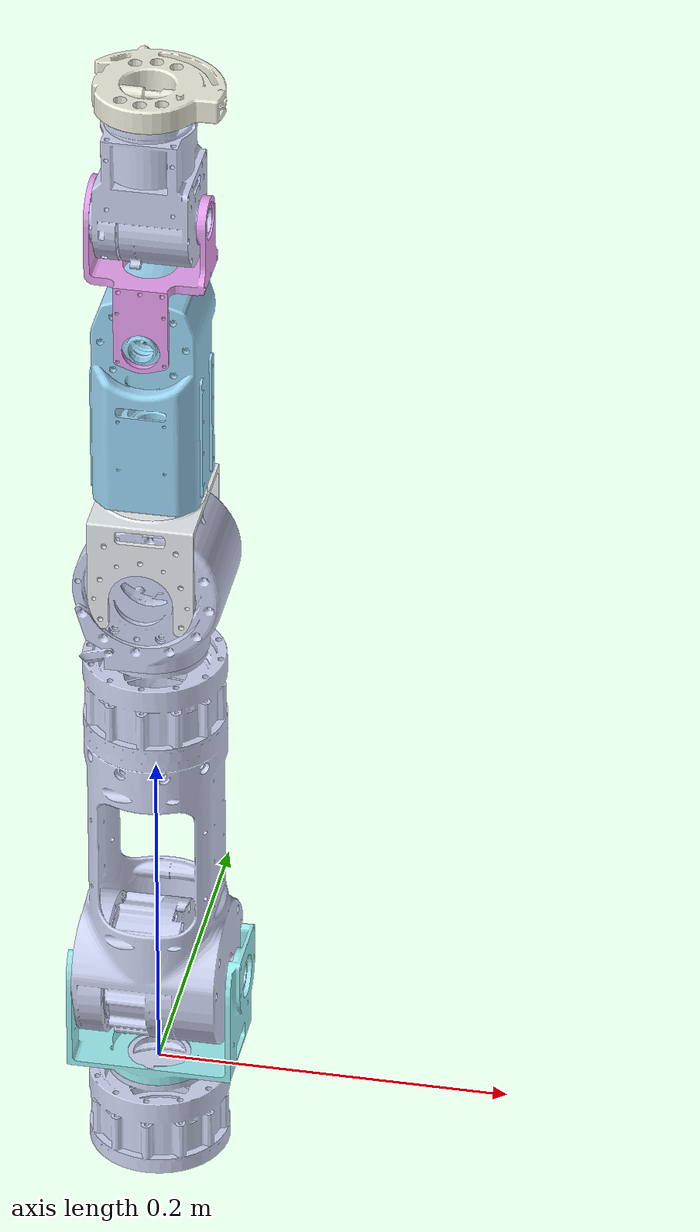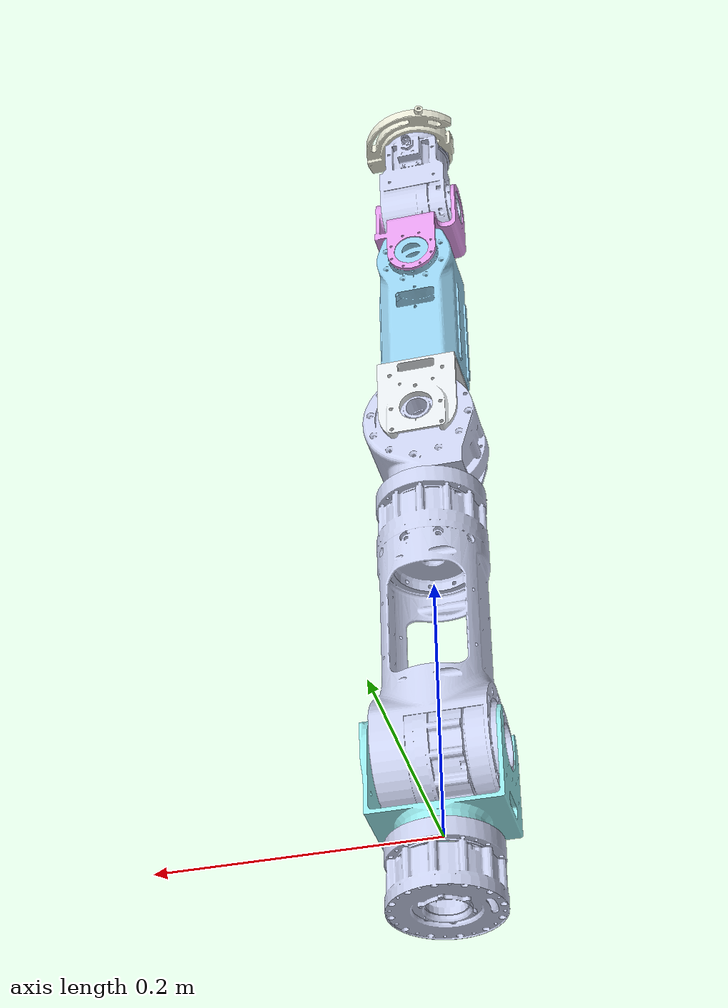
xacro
<?xml version="1.0"?>
<robot name="hand" xmlns:xacro="http://www.ros.org/wiki/xacro">

    <!-- Arguments -->
    <xacro:arg name="prefix" default="" />

    <xacro:include filename="$(find libertech_ranger_arm_description)/urdf/common/arm_macro.xacro" />
    <xacro:property name="mesh_visual_path" value="file://$(find libertech_ranger_arm_description)/meshes"/>

    <link name="world"/>

    <xacro:load_arm prefix="$(arg prefix)" connected_to="world" left="false">
        <origin rpy="0.0 0.0 0.0" xyz="0.0 0.0 0.0"/>
    </xacro:load_arm>

</robot>

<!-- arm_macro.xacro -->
<robot xmlns:xacro="http://www.ros.org/wiki/xacro">
	<xacro:include filename="$(find libertech_ranger_arm_description)/urdf/common/materials.xacro"/>
	<xacro:include filename="$(find libertech_ranger_arm_description)/urdf/common/const.xacro"/>

	<xacro:macro name="load_arm" params=" prefix:='' connected_to:='' left:=False use_ft:=True *origin">
		<xacro:if value="${(left == False)}">
			<xacro:property name="arm" value="arm_right"/>
			<xacro:property name="reverse" value="1"/>
		</xacro:if>
		<xacro:if value="${(left == True)}">
			<xacro:property name="arm" value="arm_left"/>
			<xacro:property name="reverse" value="-1"/>
		</xacro:if>
		<xacro:unless value="${not connected_to}">
			<joint name="${prefix}${connected_to}_to_${arm}_fixed" type="fixed">
				<xacro:insert_block name="origin"/>
				<parent link="${prefix}${connected_to}" />
				<child link="${prefix}${arm}_link0" />
			</joint>
		</xacro:unless>
		<link name="${prefix}${arm}_link0">
			<inertial>
				<origin xyz="0.00015789 1.1425E-05 -0.026926" rpy="0 0 0" />
				<mass value="0.057424" />
				<inertia ixx="3.4494E-05" ixy="-8.7249E-09" ixz="1.5443E-08" iyy="3.4241E-05" iyz="3.5354E-09" izz="6.5635E-05" />
			</inertial>
			<visual>
				<origin xyz="0 0 0" rpy="0 0 0" />
				<geometry>
					<mesh filename="${mesh_visual_path}/arm/link0.STL" />
				</geometry>
				<material name="">
					<color rgba="0.79216 0.81961 0.93333 1" />
				</material>
			</visual>
			<collision>
				<origin xyz="0 0 0" rpy="0 0 0" />
				<geometry>
					<mesh filename="${mesh_visual_path}/arm/link0.STL" />
				</geometry>
			</collision>
		</link>
		<link name="${prefix}${arm}_link1">
			<inertial>
				<origin xyz="0.0067996 -8.3556E-09 0.02733" rpy="0 0 0" />
				<mass value="0.10407" />
				<inertia ixx="8.2311E-05" ixy="1.9979E-10" ixz="-1.0236E-05" iyy="0.00018185" iyz="-5.5152E-12" izz="0.00017098" />
			</inertial>
			<visual>
				<origin xyz="0 0 0" rpy="0 0 0" />
				<geometry>
					<mesh filename="${mesh_visual_path}/arm/link1.STL" />
				</geometry>
				<material name="">
					<color rgba="0.59804 0.91765 0.92941 1" />
				</material>
			</visual>
			<collision>
				<origin xyz="0 0 0" rpy="0 0 0" />
				<geometry>
					<mesh filename="${mesh_visual_path}/arm/link1.STL" />
				</geometry>
			</collision>
		</link>
		<joint name="${prefix}${arm}_joint1" type="revolute">
			<origin xyz="0 0 0" rpy="0 0 0" />
			<parent link="${prefix}${arm}_link0" />
			<child link="${prefix}${arm}_link1" />
			<axis xyz="0 0 ${reverse}" />
			<limit lower="${J1_min}" upper="${J1_max}" effort="${J1_torque_max}" velocity="${J1_velocity_max}" />
		</joint>
		<link name="${prefix}${arm}_link2">
			<inertial>
				<origin xyz="-0.00010195 0.083732 -0.00067262" rpy="0 0 0" />
				<mass value="0.23039" />
				<inertia ixx="0.00041883" ixy="-5.1421E-08" ixz="7.7215E-09" iyy="0.00018974" iyz="6.3393E-06" izz="0.00050303" />
			</inertial>
			<visual>
				<origin xyz="0 0 0" rpy="0 0 0" />
				<geometry>
					<mesh filename="${mesh_visual_path}/arm/link2.STL" />
				</geometry>
				<material name="">
					<color rgba="0.79216 0.81961 0.93333 1" />
				</material>
			</visual>
			<collision>
				<origin xyz="0 0 0" rpy="0 0 0" />
				<geometry>
					<mesh filename="${mesh_visual_path}/arm/link2.STL" />
				</geometry>
			</collision>
		</link>
		<joint name="${prefix}${arm}_joint2" type="revolute">
			<origin xyz="0 0 0.062" rpy="1.5708 0 1.5708" />
			<parent link="${prefix}${arm}_link1" />
			<child link="${prefix}${arm}_link2" />
			<axis xyz="0 0 ${reverse}" />
			<limit lower="${J2_min}" upper="${J2_max}" effort="${J2_torque_max}" velocity="${J2_velocity_max}" />
		</joint>
		<link name="${prefix}${arm}_link3">
			<inertial>
				<origin xyz="0.0058456 -0.0011149 0.26476" rpy="0 0 0" />
				<mass value="0.098445" />
				<inertia ixx="7.7802E-05" ixy="${1.0294E-06*reverse}" ixz="${-1.0177E-05*reverse}" iyy="0.00011471" iyz="1.6629E-07" izz="6.9147E-05" />
			</inertial>
			<visual>
				<origin xyz="0 0 0" rpy="0 0 0" />
				<geometry>
					<mesh filename="${mesh_visual_path}/arm/link3.STL" scale="${reverse} 1 1"/>
				</geometry>
				<material name="">
					<color rgba="0.79216 0.81961 0.93333 1" />
				</material>
			</visual>
		</link>
		<joint name="${prefix}${arm}_joint3" type="revolute">
			<origin xyz="0 0 0" rpy="-1.5708 0 0" />
			<parent link="${prefix}${arm}_link2" />
			<child link="${prefix}${arm}_link3" />
			<axis xyz="0 0 ${reverse}" />
			<limit lower="${J3_min}" upper="${J3_max}" effort="${J3_torque_max}" velocity="${J3_velocity_max}" />
		</joint>
		<link name="${prefix}${arm}_link4">
			<inertial>
				<origin xyz="-1.2044E-08 0.027148 -0.0065686" rpy="0 0 0" />
				<mass value="0.083265" />
				<inertia ixx="9.7154E-05" ixy="8.5996E-12" ixz="-1.0835E-10" iyy="9.5206E-05" iyz="-6.2319E-06" izz="5.8053E-05" />
			</inertial>
			<visual>
				<origin xyz="0 0 0" rpy="0 0 0" />
				<geometry>
					<mesh filename="${mesh_visual_path}/arm/link4.STL" />
				</geometry>
				<material name="">
					<color rgba="0.89804 0.91765 0.92941 1" />
				</material>
			</visual>
			<collision>
				<origin xyz="0 0 0" rpy="0 0 0" />
				<geometry>
					<mesh filename="${mesh_visual_path}/arm/link4.STL" />
				</geometry>
			</collision>
		</link>
		<joint name="${prefix}${arm}_joint4" type="revolute">
			<origin xyz="0 0 0.27" rpy="1.5708 0 0" />
			<parent link="${prefix}${arm}_link3" />
			<child link="${prefix}${arm}_link4" />
			<axis xyz="0 0 ${reverse}" />
			<limit lower="${J4_min}" upper="${J4_max}" effort="${J4_torque_max}" velocity="${J4_velocity_max}" />
		</joint>
		<link name="${prefix}${arm}_link5">
			<inertial>
				<origin xyz="5.7592E-05 0.0030098 0.11674" rpy="0 0 0" />
				<mass value="0.10135" />
				<inertia ixx="0.00011025" ixy="5.7106E-09" ixz="-2.863E-08" iyy="0.00013727" iyz="-1.4278E-06" izz="4.6819E-05" />
			</inertial>
			<visual>
				<origin xyz="0 0 0" rpy="0 0 0" />
				<geometry>
					<mesh filename="${mesh_visual_path}/arm/link5.STL" />
				</geometry>
				<material name="">
					<color rgba="0.59216 0.81961 0.93333 1" />
				</material>
			</visual>
			<collision>
				<origin xyz="0 0 0" rpy="0 0 0" />
				<geometry>
					<mesh filename="${mesh_visual_path}/arm/link5.STL" />
				</geometry>
			</collision>
		</link>
		<joint name="${prefix}${arm}_joint5" type="revolute">
			<origin xyz="0 0 0" rpy="-1.5708 0 0" />
			<parent link="${prefix}${arm}_link4" />
			<child link="${prefix}${arm}_link5" />
			<axis xyz="0 0 ${reverse}" />
			<limit lower="${J5_min}" upper="${J5_max}" effort="${J5_torque_max}" velocity="${J5_velocity_max}" />
		</joint>
		<link name="${prefix}${arm}_link6">
			<inertial>
				<origin xyz="-0.00073065 0.035532 -0.0043423" rpy="0 0 0" />
				<mass value="0.069725" />
				<inertia ixx="3.6856E-05" ixy="${6.4441E-06*reverse}" ixz="${3.2959E-06*reverse}" iyy="3.961E-05" iyz="-7.8545E-06" izz="3.6658E-05" />
			</inertial>
			<visual>
				<origin xyz="0 0 0" rpy="0 0 0" />
				<geometry>
					<mesh filename="${mesh_visual_path}/arm/link6.STL" scale="${reverse} 1 1"/>
				</geometry>
				<material name="">
					<color rgba="0.89804 0.61765 0.92941 1" />
				</material>
			</visual>
		</link>
		<joint name="${prefix}${arm}_joint6" type="revolute">
			<origin xyz="0 0 0.157" rpy="1.5708 0 0" />
			<parent link="${prefix}${arm}_link5" />
			<child link="${prefix}${arm}_link6" />
			<axis xyz="0 0 ${reverse}" />
			<limit lower="${J6_min}" upper="${J6_max}" effort="${J6_torque_max}" velocity="${J6_velocity_max}" />
		</joint>
		<link name="${prefix}${arm}_link7">
			<inertial>
				<origin xyz="0.031922 0.00073671 0.0014868" rpy="0 0 0" />
				<mass value="0.11565" />
				<inertia ixx="4.2212E-05" ixy="${-9.2648E-09*reverse}" ixz="1.6154E-06" iyy="3.1231E-05" iyz="${3.4989E-09*reverse}" izz="4.1383E-05" />
			</inertial>
			<visual>
				<origin xyz="0 0 0" rpy="0 0 0" />
				<geometry>
					<mesh filename="${mesh_visual_path}/arm/link7.STL" scale="1 ${reverse} 1"/>
				</geometry>
				<material name="">
					<color rgba="0.79216 0.81961 0.93333 1" />
				</material>
			</visual>
		</link>
		<joint name="${prefix}${arm}_joint7" type="revolute">
			<origin xyz="0 0.07 0" rpy="${-reverse * 1.5708} 0 1.5708" />
			<parent link="${prefix}${arm}_link6" />
			<child link="${prefix}${arm}_link7" />
			<axis xyz="0 0 ${-reverse}" />
			<limit lower="${J7_min}" upper="${J7_max}" effort="${J7_torque_max}" velocity="${J7_velocity_max}" />
		</joint>

		<link name="${prefix}${arm}_quick_release">
			<inertial>
				<origin xyz="-0.0046261 0.0032983 0.0069587" rpy="0 0 0" />
				<mass value="0.5" />
				<inertia ixx="3.5312E-05" ixy="-3.2715E-06" ixz="5.6547E-09" iyy="2.4468E-05" iyz="-2.9526E-09" izz="5.6973E-05" />
			</inertial>
			<visual>
				<origin xyz="0 0 0" rpy="0 0 0" />
				<geometry>
					<mesh filename="${mesh_visual_path}/arm/quick_release.STL"/>
				</geometry>
				<material name="silver" />
			</visual>
			<collision>
				<origin xyz="0 0 0" rpy="0 0 0" />
				<geometry>
					<mesh filename="${mesh_visual_path}/arm/quick_release.STL"/>
				</geometry>
			</collision>
		</link>
		<joint name="${prefix}${arm}_quick_release_joint" type="fixed">
			<origin xyz="0.0675 0 0" rpy="${PI/2} ${PI} ${PI/2}" />
			<parent link="${prefix}${arm}_link7" />
			<child link="${prefix}${arm}_quick_release" />
			<axis xyz="0 0 0" />
		</joint>

		<link name="${prefix}${arm}_flange_link"></link>
		<joint name="${prefix}${arm}_flange_joint" type="fixed">
			<origin rpy="0.0 0.0 0.0 " xyz="0.0675 0 0"/>
			<parent link="${prefix}${arm}_link7"/>
			<child link="${prefix}${arm}_flange_link"/>
		</joint>

		<link name="${prefix}${arm}_tool_link"></link>
		<joint name="${prefix}${arm}_tool_joint" type="fixed">
			<origin rpy="0.0 0.0 0.0 " xyz="0.15 0 0"/>
			<parent link="${prefix}${arm}_flange_link"/>
			<child link="${prefix}${arm}_tool_link"/>
		</joint>

		<xacro:if value="${use_ft}">
			<link name="${prefix}${arm}_rokubi_ft_link"></link>
			<joint name="${prefix}${arm}_rokubi_ft_joint" type="fixed">
				<xacro:if value="${(left == False)}">
					<origin rpy="${PI} ${-PI/2} 0.0 " xyz="0.0295 0 0"/>
				</xacro:if>
				<xacro:if value="${(left == True)}">
					<origin rpy="0.0 ${PI/2} 0.0 " xyz="0.0295 0 0"/>
				</xacro:if>
				<parent link="${prefix}${arm}_link7"/>
				<child link="${prefix}${arm}_rokubi_ft_link"/>
			</joint>
			<link name="${prefix}${arm}_rokubi_ft_wrench_link"></link>
			<joint name="${prefix}${arm}_rokubi_ft_wrench_joint" type="fixed">
				<origin rpy="0 0 0" xyz="0 0 0.032"/>
				<parent link="${prefix}${arm}_rokubi_ft_link"/>
				<child link="${prefix}${arm}_rokubi_ft_wrench_link"/>
			</joint>
		</xacro:if>
	</xacro:macro>
</robot>

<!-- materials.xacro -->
<robot>

    <material name="black">
        <color rgba="0.0 0.0 0.0 1.0"/>
    </material>

    <material name="blue">
        <color rgba="0.0 0.0 0.8 1.0"/>
    </material>

    <material name="green">
        <color rgba="0.0 0.8 0.0 1.0"/>
    </material>

    <material name="grey">
        <color rgba="0.2 0.2 0.2 1.0"/>
    </material>

    <material name="grey_alpha">
        <color rgba="0.2 0.2 0.2 0.5"/>
    </material>

    <material name="silver">
        <color rgba="${233/255} ${233/255} ${216/255} 1.0"/>
    </material>

    <material name="orange">
        <color rgba="${255/255} ${108/255} ${10/255} 1.0"/>
    </material>

    <material name="orange_alpha">
        <color rgba="${255/255} ${108/255} ${10/255} 0.85"/>
    </material>

    <material name="brown">
        <color rgba="${222/255} ${207/255} ${195/255} 1.0"/>
    </material>

    <material name="red">
        <color rgba="0.8 0.0 0.0 1.0"/>
    </material>

    <material name="white_alpha">
        <color rgba="1.0 1.0 1.0 0.5"/>
    </material>

    <material name="white">
        <color rgba="1.0 1.0 1.0 1.0"/>
    </material>

</robot>

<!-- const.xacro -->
<robot xmlns:xacro="http://www.ros.org/wiki/xacro" name="liberman">

    <!-- Constants for robot dimensions -->
    <xacro:property name="PI" value="3.1415926535897931"/>

    <!-- 尽管有些关节可以到180或90度，但拟人化处理 -->
    <xacro:property name="J1_min" value="${-70*PI/180}"/>
    <xacro:property name="J1_max" value="${140*PI/180}"/>
    <xacro:property name="J1_velocity_max" value="${200*PI/180}"/>
    <xacro:property name="J1_torque_max" value="45.0"/>

    <xacro:property name="J2_min" value="${-90*PI/180}"/>
    <xacro:property name="J2_max" value="${80*PI/180}"/>
    <xacro:property name="J2_velocity_max" value="${200*PI/180}"/>
    <xacro:property name="J2_torque_max" value="45.0"/>

    <xacro:property name="J3_min" value="${-170*PI/180}"/>
    <xacro:property name="J3_max" value="${-10*PI/180}"/>
    <xacro:property name="J3_velocity_max" value="${200*PI/180}"/>
    <xacro:property name="J3_torque_max" value="45.0"/>

    <xacro:property name="J4_min" value="${0*PI/180}"/>
    <xacro:property name="J4_max" value="${105*PI/180}"/>
    <xacro:property name="J4_velocity_max" value="${200*PI/180}"/>
    <xacro:property name="J4_torque_max" value="45.0"/>

    <xacro:property name="J5_min" value="${-90*PI/180}"/>
    <xacro:property name="J5_max" value="${90*PI/180}"/>
    <xacro:property name="J5_velocity_max" value="${200*PI/180}"/>
    <xacro:property name="J5_torque_max" value="45.0"/>

    <xacro:property name="J6_min" value="${-75*PI/180}"/>
    <xacro:property name="J6_max" value="${75*PI/180}"/>
    <xacro:property name="J6_velocity_max" value="${200*PI/180}"/>
    <xacro:property name="J6_torque_max" value="45.0"/>

    <xacro:property name="J7_min" value="${-50*PI/180}"/>
    <xacro:property name="J7_max" value="${50*PI/180}"/>
    <xacro:property name="J7_velocity_max" value="${200*PI/180}"/>
    <xacro:property name="J7_torque_max" value="45.0"/>

    <!-- joint limits -->
    <xacro:property name="joint_damping" value="0.1"/>
    <xacro:property name="joint_friction" value="0.1"/>

</robot>
